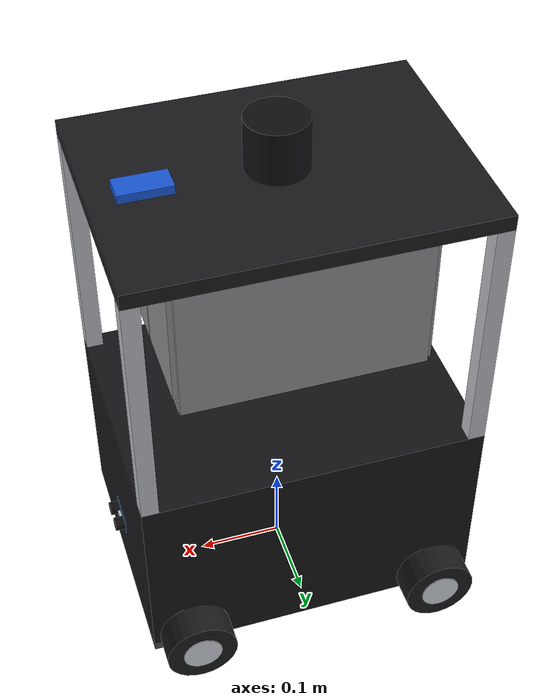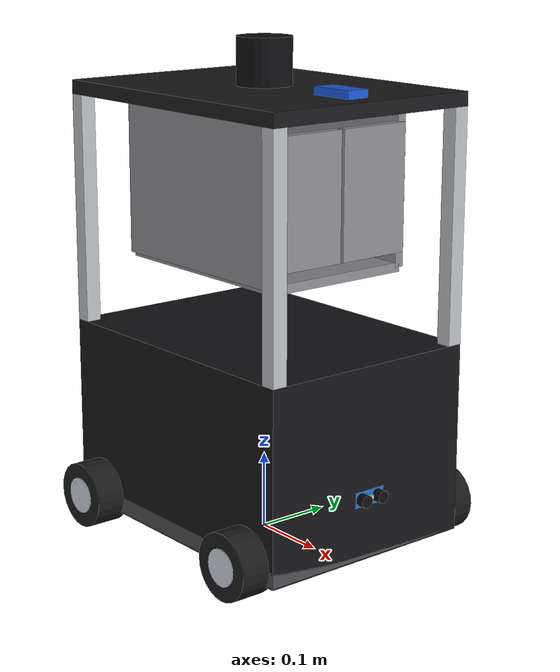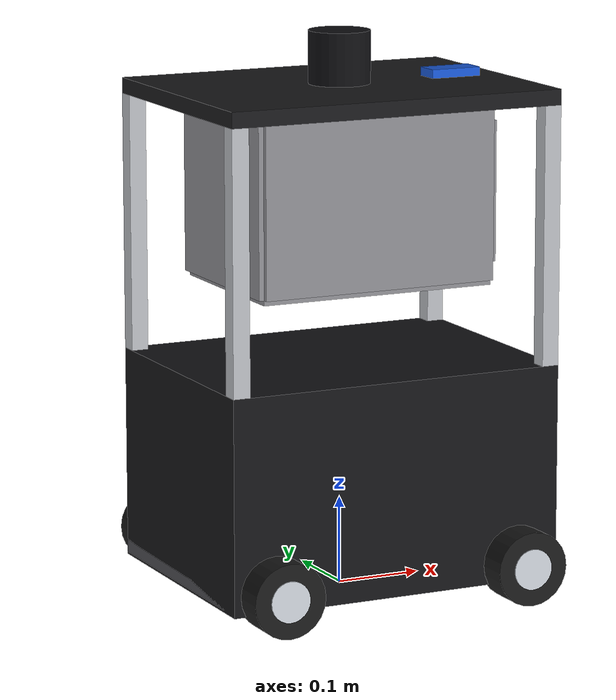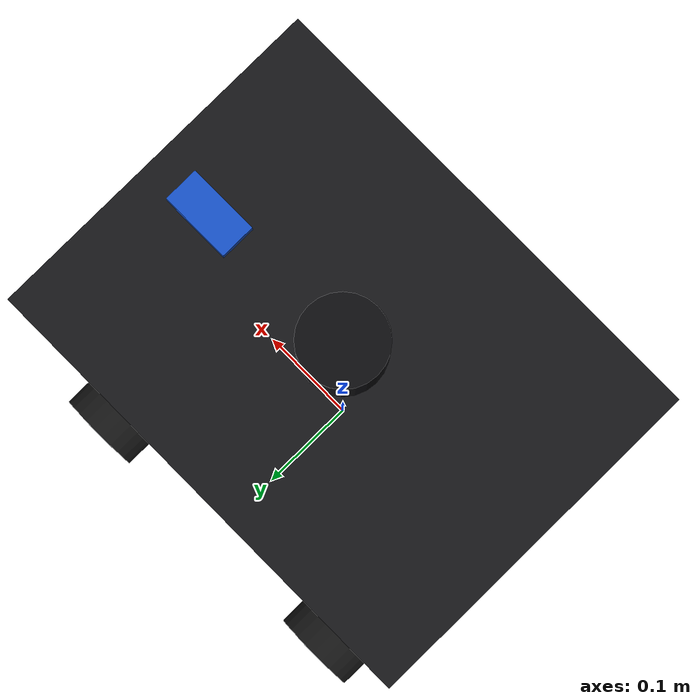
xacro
<?xml version="1.0"?>
<robot name="my_robot" xmlns:xacro="http://www.ros.org/wiki/xacro">

  <!-- ── Shared utilities ── -->
  <xacro:include filename="$(find robot_description)/urdf/properties.xacro"/>
  <xacro:include filename="$(find robot_description)/urdf/inertials.xacro"/>
  <xacro:include filename="$(find robot_description)/urdf/materials.xacro"/>

  <!-- ── Sub-components ── -->
  <xacro:include filename="$(find robot_description)/urdf/base/base.xacro"/>
  <xacro:include filename="$(find robot_description)/urdf/wheels/drive_wheel.xacro"/>
  <xacro:include filename="$(find robot_description)/urdf/sensors/lidar.xacro"/>
  <xacro:include filename="$(find robot_description)/urdf/sensors/imu.xacro"/>
  <xacro:include filename="$(find robot_description)/urdf/sensors/ultrasonic.xacro"/>

  <!-- ── Instantiate robot ── -->

  <!-- Enclosure (base_link static geometry) + split doors -->
  <xacro:base/>

  <!-- 4WD skid-steer drive wheels (one per corner) -->
  <xacro:drive_wheel prefix="front_left"  x_pos="${wheel_x_offset}"  y_reflect=" 1"/>
  <xacro:drive_wheel prefix="front_right" x_pos="${wheel_x_offset}"  y_reflect="-1"/>
  <xacro:drive_wheel prefix="rear_left"   x_pos="${-wheel_x_offset}" y_reflect=" 1"/>
  <xacro:drive_wheel prefix="rear_right"  x_pos="${-wheel_x_offset}" y_reflect="-1"/>

  <!-- Sensors -->
  <xacro:lidar/>        <!-- on the deck -->
  <xacro:imu/>          <!-- centre of base -->
  <xacro:ultrasonic/>   <!-- HC-SR04 on the front -->

</robot>

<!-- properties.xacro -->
<robot xmlns:xacro="http://www.ros.org/wiki/xacro">

  <!-- ── Math ── -->
  <xacro:property name="PI" value="3.14159265358979323846"/>

  <!-- ── Full footprint (bottom enclosure + top deck) ── -->
  <xacro:property name="body_length"  value="0.400"/>
  <xacro:property name="body_width"   value="0.300"/>
  <xacro:property name="panel_thickness" value="0.012"/>
  <xacro:property name="chassis_thickness" value="0.020"/>

  <!-- ── Drive wheels (85 mm Ø, 45 mm wide) ── -->
  <xacro:property name="wheel_radius" value="0.0425"/>
  <xacro:property name="wheel_width"  value="0.045"/>
  <xacro:property name="wheel_y_offset" value="0.165"/>
  <!-- 4WD skid-steer half-wheelbase. PLACEHOLDER: real front↔rear axle / 2 -->
  <xacro:property name="wheel_x_offset" value="0.150"/>

  <!-- ── Ground clearance (wheels lowered) ── -->
  <xacro:property name="ground_clearance" value="0.020"/>
  <xacro:property name="struct_bottom_z" value="${-(wheel_radius - ground_clearance)}"/>

  <!-- ── Tier 1: BLACK bottom enclosure (full footprint) ── -->
  <xacro:property name="enclosure_h" value="0.245"/>
  <xacro:property name="enclosure_center_z" value="${struct_bottom_z + enclosure_h/2.0}"/>
  <xacro:property name="enclosure_top_z"    value="${struct_bottom_z + enclosure_h}"/>

  <!-- ── Tier 3: BLACK top deck (full footprint, overhangs) ── -->
  <xacro:property name="deck_h"        value="0.018"/>
  <xacro:property name="deck_top_z"    value="0.535"/>                        <!-- 0.600 from ground -->
  <xacro:property name="deck_bottom_z" value="${deck_top_z - deck_h}"/>
  <xacro:property name="deck_center_z" value="${deck_top_z - deck_h/2.0}"/>

  <!-- ── Grey corner bars (full height, outer corners) ── -->
  <xacro:property name="bar_size"     value="0.020"/>
  <xacro:property name="bar_h"        value="${deck_bottom_z - enclosure_top_z}"/>
  <xacro:property name="bar_center_z" value="${(enclosure_top_z + deck_bottom_z)/2.0}"/>

  <!-- ── Tier 2: GREY file compartment (SMALLER, raised, split doors) ── -->
  <xacro:property name="comp_length" value="0.280"/>   <!-- < body_length -->
  <xacro:property name="comp_width"  value="0.200"/>   <!-- < body_width -->
  <xacro:property name="comp_h"      value="0.200"/>
  <xacro:property name="comp_top_z"    value="${deck_bottom_z}"/>                 <!-- ceiling touches deck: 0.517 -->
  <xacro:property name="comp_center_z" value="${comp_top_z - comp_h/2.0}"/>
  <xacro:property name="comp_bottom_z" value="${comp_top_z - comp_h}"/>           <!-- 0.317; open gap below to 0.200 -->

  <!-- ── Split double-door (front of the GREY compartment) ── -->
  <xacro:property name="door_height"    value="0.160"/>
  <xacro:property name="door_width"     value="0.098"/>   <!-- each panel (Y), ~comp_width/2 -->
  <xacro:property name="door_thickness" value="0.012"/>

  <!-- ── RFID reader (blue box, 6 cm × 3 cm × 1 cm) — centred on the deck ── -->
  <xacro:property name="rfid_l" value="0.060"/>
  <xacro:property name="rfid_w" value="0.030"/>
  <xacro:property name="rfid_h" value="0.010"/>
  <xacro:property name="rfid_x" value="${body_length/2.0 - rfid_l/2.0 - 0.03}"/>

  <!-- ── HC-SR04 ultrasonic (blue PCB + 2 black transducers + silver crystal) ── -->
  <xacro:property name="us_pcb_w"    value="0.045"/>
  <xacro:property name="us_pcb_h"    value="0.020"/>
  <xacro:property name="us_pcb_t"    value="0.0015"/>
  <xacro:property name="us_tx_radius" value="0.008"/>
  <xacro:property name="us_tx_length" value="0.012"/>
  <xacro:property name="us_tx_sep"    value="0.026"/>
  <xacro:property name="us_height_above_ground" value="0.100"/>

  <!-- ── LTME-02A lidar (70 mm Ø, 60 mm tall) ── -->
  <xacro:property name="lidar_radius" value="0.035"/>
  <xacro:property name="lidar_height" value="0.060"/>

  <!-- ── Masses ── -->
  <xacro:property name="body_mass"  value="3.000"/>
  <xacro:property name="wheel_mass" value="0.200"/>
  <xacro:property name="lidar_mass" value="0.200"/>

</robot>

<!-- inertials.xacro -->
<!-- Reusable inertia macros. Origins are at the geometry centre of mass. -->
<robot xmlns:xacro="http://www.ros.org/wiki/xacro">

  <!-- Solid box: l=X, w=Y, h=Z -->
  <xacro:macro name="box_inertia" params="m l w h">
    <inertial>
      <mass value="${m}"/>
      <inertia
        ixx="${(1.0/12.0)*m*(w*w + h*h)}" ixy="0" ixz="0"
        iyy="${(1.0/12.0)*m*(l*l + h*h)}" iyz="0"
        izz="${(1.0/12.0)*m*(l*l + w*w)}"/>
    </inertial>
  </xacro:macro>

  <!-- Solid cylinder with principal axis along Z (e.g. lidar, column) -->
  <xacro:macro name="cylinder_inertia_z" params="m r h">
    <inertial>
      <mass value="${m}"/>
      <inertia
        ixx="${(1.0/12.0)*m*(3.0*r*r + h*h)}" ixy="0" ixz="0"
        iyy="${(1.0/12.0)*m*(3.0*r*r + h*h)}" iyz="0"
        izz="${0.5*m*r*r}"/>
    </inertial>
  </xacro:macro>

  <!-- Solid cylinder with principal axis along Y (drive wheel / caster wheel).
       r = wheel radius, h = wheel width along Y axis. -->
  <xacro:macro name="cylinder_inertia_y" params="m r h">
    <inertial>
      <mass value="${m}"/>
      <inertia
        ixx="${(1.0/12.0)*m*(3.0*r*r + h*h)}" ixy="0" ixz="0"
        iyy="${0.5*m*r*r}"                     iyz="0"
        izz="${(1.0/12.0)*m*(3.0*r*r + h*h)}"/>
    </inertial>
  </xacro:macro>

  <!-- Near-massless dummy inertia for virtual/structural links -->
  <xacro:macro name="null_inertia" params="">
    <inertial>
      <mass value="0.001"/>
      <inertia ixx="1e-6" ixy="0" ixz="0" iyy="1e-6" iyz="0" izz="1e-6"/>
    </inertial>
  </xacro:macro>

</robot>

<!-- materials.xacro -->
<!-- Named materials for RViz visualisation (chassis v3 palette). -->
<robot xmlns:xacro="http://www.ros.org/wiki/xacro">

  <!-- Bottom enclosure + deck + lidar = black -->
  <material name="enclosure_black">
    <color rgba="0.08 0.08 0.09 1.0"/>
  </material>
  <material name="deck_black">
    <color rgba="0.10 0.10 0.11 1.0"/>
  </material>
  <material name="lidar_black">
    <color rgba="0.06 0.06 0.07 1.0"/>
  </material>

  <!-- File compartment + split doors = grey -->
  <material name="compartment_grey">
    <color rgba="0.55 0.55 0.57 1.0"/>
  </material>

  <!-- Corner bars = grey (aluminium) -->
  <material name="bar_grey">
    <color rgba="0.72 0.73 0.75 1.0"/>
  </material>

  <!-- RFID reader = blue -->
  <material name="rfid_blue">
    <color rgba="0.10 0.35 0.85 1.0"/>
  </material>

  <!-- HC-SR04: blue PCB, black transducers, silver crystal -->
  <material name="us_pcb_blue">
    <color rgba="0.12 0.45 0.75 1.0"/>
  </material>
  <material name="us_transducer_black">
    <color rgba="0.05 0.05 0.05 1.0"/>
  </material>
  <material name="crystal_silver">
    <color rgba="0.75 0.76 0.78 1.0"/>
  </material>

  <!-- Wheels = black tyre, chrome/silver hub -->
  <material name="wheel_black">
    <color rgba="0.10 0.10 0.10 1.0"/>
  </material>
  <material name="wheel_hub_silver">
    <color rgba="0.80 0.82 0.85 1.0"/>
  </material>

  <!-- Chassis plate (hidden, low) -->
  <material name="chassis_grey">
    <color rgba="0.30 0.30 0.32 1.0"/>
  </material>

</robot>

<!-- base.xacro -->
<robot xmlns:xacro="http://www.ros.org/wiki/xacro">

  <xacro:macro name="base" params="">

    <!-- ── base_footprint ── -->
    <link name="base_footprint"/>
    <joint name="base_joint" type="fixed">
      <parent link="base_footprint"/>
      <child  link="base_link"/>
      <origin xyz="0 0 ${wheel_radius}" rpy="0 0 0"/>
    </joint>

    <!-- ── base_link: carries the whole static enclosure ── -->
    <link name="base_link">

      <!-- chassis plate -->
      <visual><origin xyz="0 0 ${-chassis_thickness/2.0}"/>
        <geometry><box size="${body_length} ${body_width} ${chassis_thickness}"/></geometry>
        <material name="chassis_grey"/></visual>

      <!-- tier 1: BLACK bottom enclosure (full footprint, largest) -->
      <visual><origin xyz="0 0 ${enclosure_center_z}"/>
        <geometry><box size="${body_length} ${body_width} ${enclosure_h}"/></geometry>
        <material name="enclosure_black"/></visual>

      <!-- 4 GREY corner bars (outer corners, full height enclosure→deck) -->
      <xacro:property name="bx" value="${body_length/2.0 - bar_size/2.0}"/>
      <xacro:property name="by" value="${body_width/2.0 - bar_size/2.0}"/>
      <visual><origin xyz="${bx} ${by} ${bar_center_z}"/>
        <geometry><box size="${bar_size} ${bar_size} ${bar_h}"/></geometry>
        <material name="bar_grey"/></visual>
      <visual><origin xyz="${bx} ${-by} ${bar_center_z}"/>
        <geometry><box size="${bar_size} ${bar_size} ${bar_h}"/></geometry>
        <material name="bar_grey"/></visual>
      <visual><origin xyz="${-bx} ${by} ${bar_center_z}"/>
        <geometry><box size="${bar_size} ${bar_size} ${bar_h}"/></geometry>
        <material name="bar_grey"/></visual>
      <visual><origin xyz="${-bx} ${-by} ${bar_center_z}"/>
        <geometry><box size="${bar_size} ${bar_size} ${bar_h}"/></geometry>
        <material name="bar_grey"/></visual>

      <!-- tier 2: GREY file compartment (SMALLER) — 5 panels, front open -->
      <visual><origin xyz="0 0 ${comp_bottom_z}"/>
        <geometry><box size="${comp_length} ${comp_width} ${panel_thickness}"/></geometry>
        <material name="compartment_grey"/></visual>                        <!-- floor -->
      <visual><origin xyz="0 0 ${comp_top_z}"/>
        <geometry><box size="${comp_length} ${comp_width} ${panel_thickness}"/></geometry>
        <material name="compartment_grey"/></visual>                        <!-- ceiling -->
      <visual><origin xyz="${-comp_length/2.0} 0 ${comp_center_z}"/>
        <geometry><box size="${panel_thickness} ${comp_width} ${comp_h}"/></geometry>
        <material name="compartment_grey"/></visual>                        <!-- back -->
      <visual><origin xyz="0 ${comp_width/2.0} ${comp_center_z}"/>
        <geometry><box size="${comp_length} ${panel_thickness} ${comp_h}"/></geometry>
        <material name="compartment_grey"/></visual>                        <!-- left -->
      <visual><origin xyz="0 ${-comp_width/2.0} ${comp_center_z}"/>
        <geometry><box size="${comp_length} ${panel_thickness} ${comp_h}"/></geometry>
        <material name="compartment_grey"/></visual>                        <!-- right -->

      <!-- tier 3: BLACK deck board (full footprint, overhangs) -->
      <visual><origin xyz="0 0 ${deck_center_z}"/>
        <geometry><box size="${body_length} ${body_width} ${deck_h}"/></geometry>
        <material name="deck_black"/></visual>

      <!-- RFID reader (blue), centred on the deck -->
      <visual><origin xyz="${rfid_x} 0 ${deck_top_z + rfid_h/2.0}"/>
        <geometry><box size="${rfid_l} ${rfid_w} ${rfid_h}"/></geometry>
        <material name="rfid_blue"/></visual>

      <collision><origin xyz="0 0 ${(struct_bottom_z + deck_top_z)/2.0}"/>
        <geometry><box size="${body_length} ${body_width} ${deck_top_z - struct_bottom_z}"/></geometry>
      </collision>
      <xacro:box_inertia m="${body_mass}" l="${body_length}" w="${body_width}" h="${deck_top_z - struct_bottom_z}"/>
    </link>

    <!-- ── Split double-door on the GREY compartment front (+X) ── -->
    <joint name="door_left_joint" type="revolute">
      <parent link="base_link"/>
      <child  link="door_left_link"/>
      <origin xyz="${comp_length/2.0} ${comp_width/2.0} ${comp_center_z}" rpy="0 0 0"/>
      <axis xyz="0 0 1"/>
      <limit lower="0.0" upper="1.571" effort="2.0" velocity="2.0"/>
    </joint>
    <link name="door_left_link">
      <visual><origin xyz="0 ${-door_width/2.0} 0"/>
        <geometry><box size="${door_thickness} ${door_width} ${door_height}"/></geometry>
        <material name="compartment_grey"/></visual>
    </link>

    <joint name="door_right_joint" type="revolute">
      <parent link="base_link"/>
      <child  link="door_right_link"/>
      <origin xyz="${comp_length/2.0} ${-comp_width/2.0} ${comp_center_z}" rpy="0 0 0"/>
      <axis xyz="0 0 1"/>
      <limit lower="-1.571" upper="0.0" effort="2.0" velocity="2.0"/>
    </joint>
    <link name="door_right_link">
      <visual><origin xyz="0 ${door_width/2.0} 0"/>
        <geometry><box size="${door_thickness} ${door_width} ${door_height}"/></geometry>
        <material name="compartment_grey"/></visual>
    </link>

  </xacro:macro>

</robot>

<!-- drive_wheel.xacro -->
<robot xmlns:xacro="http://www.ros.org/wiki/xacro">

  <xacro:macro name="drive_wheel" params="prefix y_reflect x_pos:=0">

    <link name="${prefix}_wheel_link">
      <visual>
        <!--
          Cylinder default axis is Z; rotate PI/2 around X so the spinning
          axis aligns with Y (REP-103: left/right axis).
        -->
        <origin xyz="0 0 0" rpy="${PI/2.0} 0 0"/>
        <geometry>
          <cylinder radius="${wheel_radius}" length="${wheel_width}"/>
        </geometry>
        <material name="wheel_black"/>
      </visual>

      <!-- Separate hub disc for the coloured alloy rim -->
      <visual>
        <origin xyz="0 0 0" rpy="${PI/2.0} 0 0"/>
        <geometry>
          <cylinder radius="${wheel_radius * 0.55}" length="${wheel_width * 1.05}"/>
        </geometry>
        <material name="wheel_hub_silver"/>
      </visual>

      <collision>
        <origin xyz="0 0 0" rpy="${PI/2.0} 0 0"/>
        <geometry>
          <cylinder radius="${wheel_radius}" length="${wheel_width}"/>
        </geometry>
      </collision>

      <!-- Inertia: cylinder axis along Y -->
      <xacro:cylinder_inertia_y m="${wheel_mass}" r="${wheel_radius}" h="${wheel_width}"/>
    </link>

    <joint name="${prefix}_wheel_joint" type="continuous">
      <parent link="base_link"/>
      <child  link="${prefix}_wheel_link"/>
      <origin xyz="${x_pos} ${y_reflect * wheel_y_offset} 0" rpy="0 0 0"/>
      <axis xyz="0 1 0"/>
    </joint>

  </xacro:macro>

</robot>

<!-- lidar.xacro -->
<robot xmlns:xacro="http://www.ros.org/wiki/xacro">

  <xacro:macro name="lidar" params="">

    <link name="laser">
      <visual>
        <origin xyz="0 0 ${lidar_height/2.0}" rpy="0 0 0"/>
        <geometry><cylinder radius="${lidar_radius}" length="${lidar_height}"/></geometry>
        <material name="lidar_black"/>
      </visual>
      <collision>
        <origin xyz="0 0 ${lidar_height/2.0}" rpy="0 0 0"/>
        <geometry><cylinder radius="${lidar_radius}" length="${lidar_height}"/></geometry>
      </collision>
      <xacro:cylinder_inertia_z m="${lidar_mass}" r="${lidar_radius}" h="${lidar_height}"/>
    </link>

    <!-- On the deck top surface, centred (270° FOV faces forward). -->
    <joint name="laser_joint" type="fixed">
      <parent link="base_link"/>
      <child  link="laser"/>
      <origin xyz="0 0 ${deck_top_z}" rpy="0 0 0"/>
    </joint>

  </xacro:macro>

</robot>

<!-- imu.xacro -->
<robot xmlns:xacro="http://www.ros.org/wiki/xacro">

  <xacro:macro name="imu" params="">

    <link name="imu_link">
      <visual>
        <geometry><box size="0.025 0.020 0.005"/></geometry>
        <material name="enclosure_black"/>
      </visual>
    </link>

    <joint name="imu_joint" type="fixed">
      <parent link="base_link"/>
      <child  link="imu_link"/>
      <!-- Centre of the base, just above the chassis plate. -->
      <origin xyz="0 0 0.008" rpy="0 0 0"/>
    </joint>

  </xacro:macro>

</robot>

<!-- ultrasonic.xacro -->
<robot xmlns:xacro="http://www.ros.org/wiki/xacro">

  <xacro:macro name="ultrasonic" params="">

    <link name="ultrasonic_link">
      <!-- blue PCB -->
      <visual>
        <origin xyz="0 0 0" rpy="0 0 0"/>
        <geometry><box size="${us_pcb_t} ${us_pcb_w} ${us_pcb_h}"/></geometry>
        <material name="us_pcb_blue"/>
      </visual>
      <!-- left transducer (black cylinder, protruding forward) -->
      <visual>
        <origin xyz="${us_tx_length/2.0} ${us_tx_sep/2.0} 0" rpy="0 ${PI/2.0} 0"/>
        <geometry><cylinder radius="${us_tx_radius}" length="${us_tx_length}"/></geometry>
        <material name="us_transducer_black"/>
      </visual>
      <!-- right transducer -->
      <visual>
        <origin xyz="${us_tx_length/2.0} ${-us_tx_sep/2.0} 0" rpy="0 ${PI/2.0} 0"/>
        <geometry><cylinder radius="${us_tx_radius}" length="${us_tx_length}"/></geometry>
        <material name="us_transducer_black"/>
      </visual>
      <!-- silver crystal oscillator between the transducers -->
      <visual>
        <origin xyz="${us_pcb_t} 0 0" rpy="0 0 0"/>
        <geometry><box size="0.005 0.010 0.005"/></geometry>
        <material name="crystal_silver"/>
      </visual>
    </link>

    <joint name="ultrasonic_joint" type="fixed">
      <parent link="base_link"/>
      <child  link="ultrasonic_link"/>
      <origin xyz="${body_length/2.0} 0 ${us_height_above_ground - wheel_radius}" rpy="0 0 0"/>
    </joint>

  </xacro:macro>

</robot>
